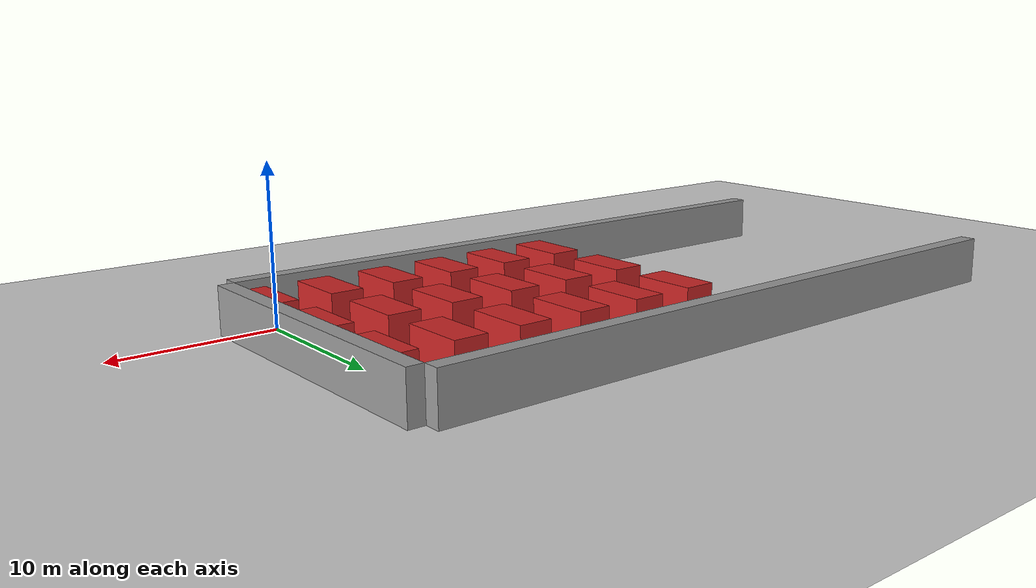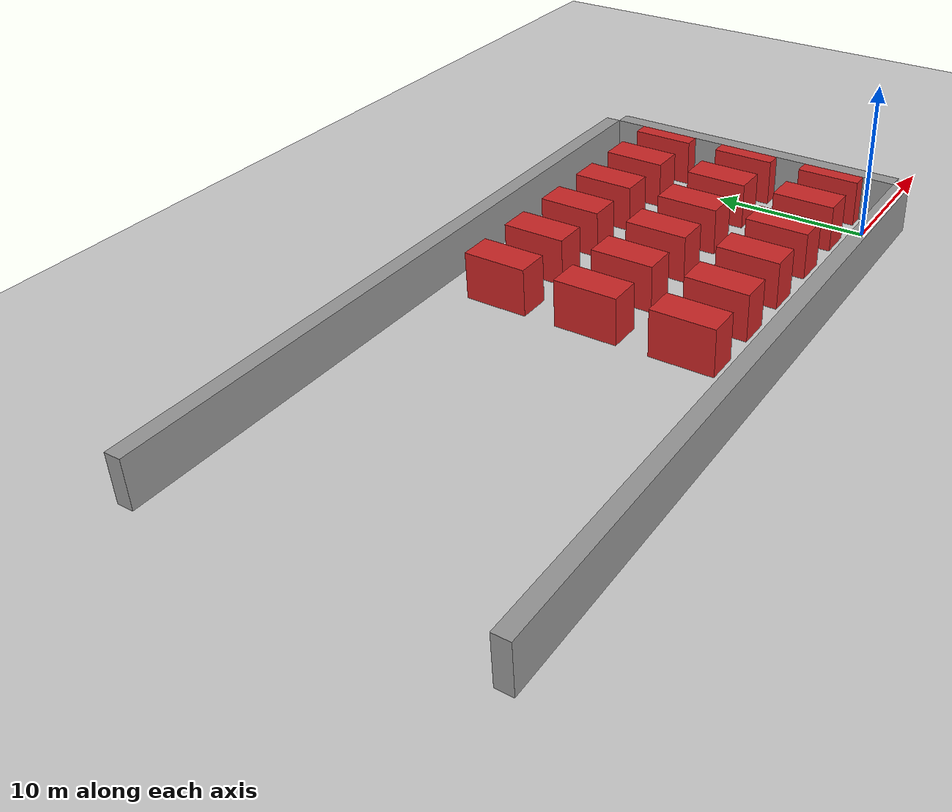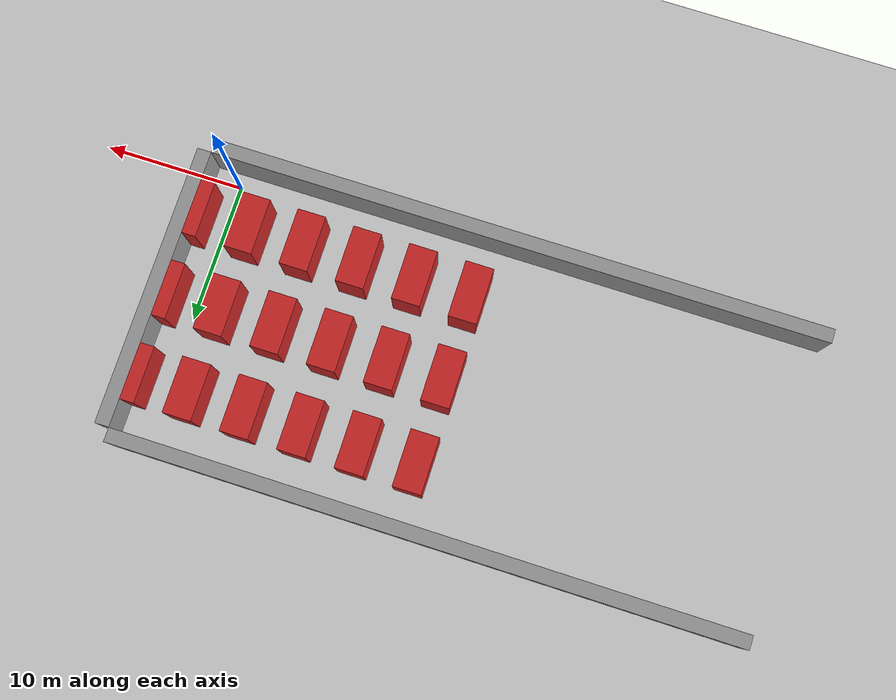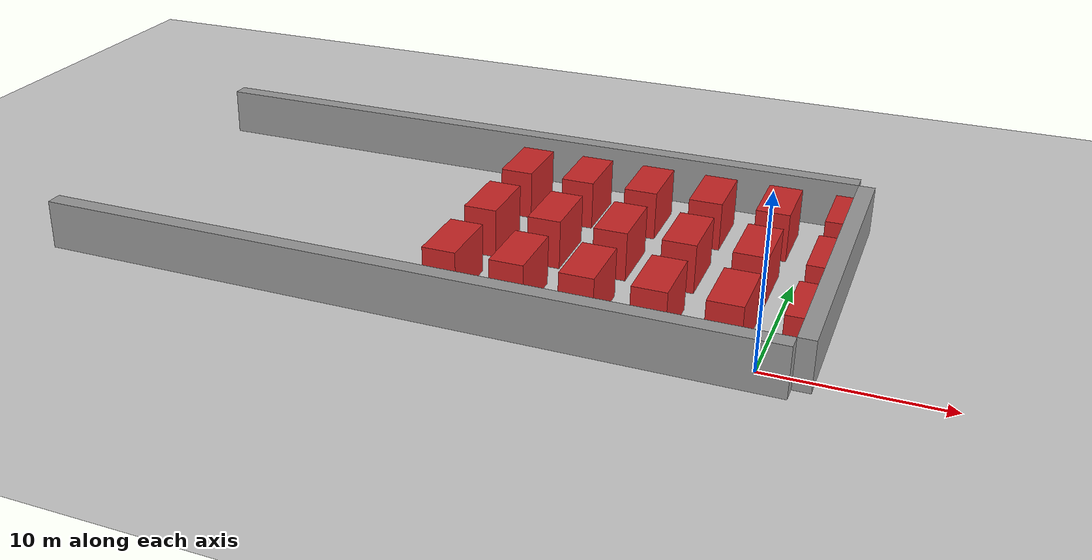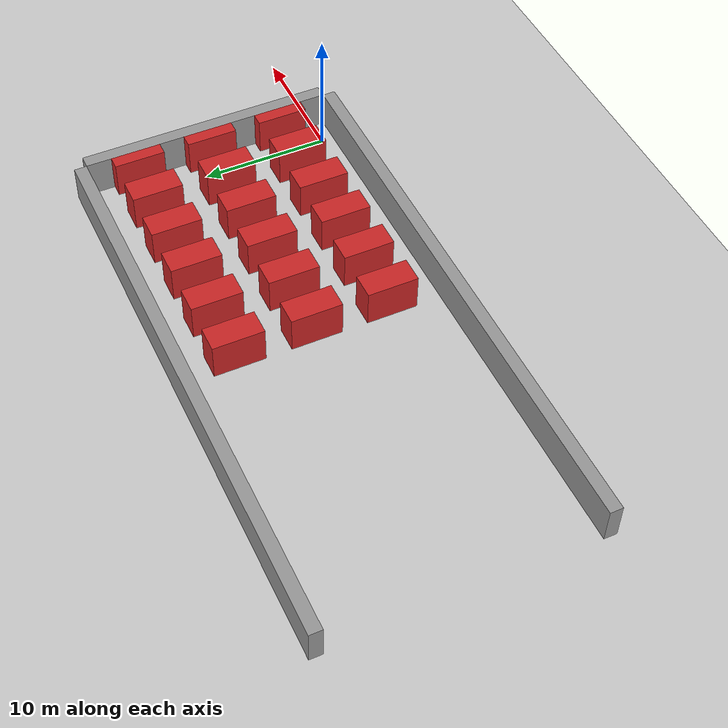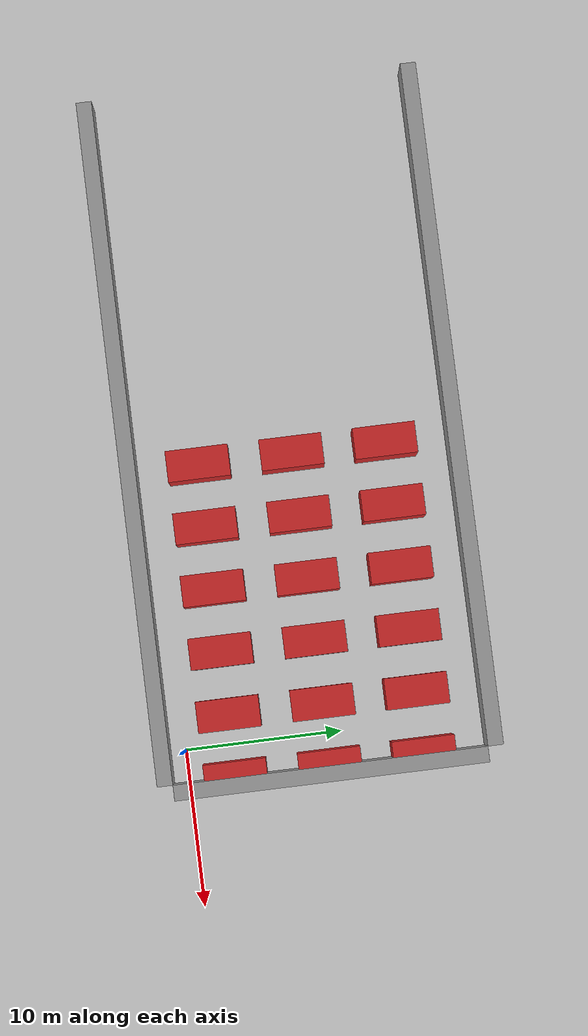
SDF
<sdf version="1.6">
 <world name="default">
  <model name="ground_plane">
   <static>1</static>
   <link name="link">
    <collision name="collision">
     <geometry><plane><normal>0 0 1</normal><size>100 100</size></plane></geometry>
     <surface><friction><ode><mu>100</mu><mu2>50</mu2></ode></friction></surface>
    </collision>
    <visual name="visual">
     <cast_shadows>0</cast_shadows>
     <geometry><plane><normal>0 0 1</normal><size>100 100</size></plane></geometry>
     <material>
      <script><uri>file://media/materials/scripts/gazebo.material</uri><name>Gazebo/Grey</name></script>
     </material>
    </visual>
   </link>
  </model>
  <model name="garage">
   <link name="link">
    <pose>23.5 -0 0 0 -0 0</pose>
    <inertial>
     <mass>1</mass>
     <inertia>
      <ixx>0.166667</ixx>
      <ixy>0</ixy>
      <ixz>0</ixz>
      <iyy>0.166667</iyy>
      <iyz>0</iyz>
      <izz>0.166667</izz>
     </inertia>
    </inertial>
    <kinematic>1</kinematic>
    <gravity>0</gravity>
    <visual name="visual">
     <geometry><box><size>1 20 3</size></box></geometry>
     <material>
      <script><name>Gazebo/Grey</name><uri>file://media/materials/scripts/gazebo.material</uri></script>
      <ambient>0.3 0.3 0.3 1</ambient>
      <diffuse>0.7 0.7 0.7 1</diffuse>
      <specular>0.01 0.01 0.01 1</specular>
      <emissive>0 0 0 1</emissive>
      <shader type="vertex"><normal_map>__default__</normal_map></shader>
     </material>
    </visual>
    <collision name="collision">
     <geometry><box><size>1 20 3</size></box></geometry>
     <surface>
      <friction>
       <ode><mu>1</mu><mu2>1</mu2><fdir1>0 0 0</fdir1><slip1>0</slip1><slip2>0</slip2></ode>
       <torsional>
        <coefficient>1</coefficient>
        <patch_radius>0</patch_radius>
        <surface_radius>0</surface_radius>
        <use_patch_radius>1</use_patch_radius>
        <ode><slip>0</slip></ode>
       </torsional>
      </friction>
      <bounce><restitution_coefficient>0</restitution_coefficient><threshold>1e+06</threshold></bounce>
      <contact>
       <collide_without_contact>0</collide_without_contact>
       <collide_without_contact_bitmask>1</collide_without_contact_bitmask>
       <collide_bitmask>1</collide_bitmask>
       <ode>
        <soft_cfm>0</soft_cfm>
        <soft_erp>0.2</soft_erp>
        <kp>1e+13</kp>
        <kd>1</kd>
        <max_vel>0.01</max_vel>
        <min_depth>0</min_depth>
       </ode>
       <bullet>
        <split_impulse>1</split_impulse>
        <split_impulse_penetration_threshold>-0.01</split_impulse_penetration_threshold>
        <soft_cfm>0</soft_cfm>
        <soft_erp>0.2</soft_erp>
        <kp>1e+13</kp>
        <kd>1</kd>
       </bullet>
      </contact>
     </surface>
    </collision>
   </link>
   <link name="link_0_clone">
    <pose>1 10.5 -0 0 -0 0</pose>
    <inertial>
     <mass>1</mass>
     <inertia>
      <ixx>0.166667</ixx>
      <ixy>0</ixy>
      <ixz>0</ixz>
      <iyy>0.166667</iyy>
      <iyz>0</iyz>
      <izz>0.166667</izz>
     </inertia>
    </inertial>
    <kinematic>1</kinematic>
    <gravity>0</gravity>
    <visual name="visual">
     <geometry><box><size>44 1 3</size></box></geometry>
     <material>
      <lighting>1</lighting>
      <script><uri>file://media/materials/scripts/gazebo.material</uri><name>Gazebo/Grey</name></script>
      <ambient>0.3 0.3 0.3 1</ambient>
      <diffuse>0.7 0.7 0.7 1</diffuse>
      <specular>0.01 0.01 0.01 1</specular>
      <emissive>0 0 0 1</emissive>
      <shader type="vertex"><normal_map>__default__</normal_map></shader>
     </material>
    </visual>
    <collision name="collision">
     <geometry><box><size>44 1 3</size></box></geometry>
     <surface>
      <friction>
       <ode><mu>1</mu><mu2>1</mu2><fdir1>0 0 0</fdir1><slip1>0</slip1><slip2>0</slip2></ode>
       <torsional>
        <coefficient>1</coefficient>
        <patch_radius>0</patch_radius>
        <surface_radius>0</surface_radius>
        <use_patch_radius>1</use_patch_radius>
        <ode><slip>0</slip></ode>
       </torsional>
      </friction>
      <bounce><restitution_coefficient>0</restitution_coefficient><threshold>1e+06</threshold></bounce>
      <contact>
       <collide_without_contact>0</collide_without_contact>
       <collide_without_contact_bitmask>1</collide_without_contact_bitmask>
       <collide_bitmask>1</collide_bitmask>
       <ode>
        <soft_cfm>0</soft_cfm>
        <soft_erp>0.2</soft_erp>
        <kp>1e+13</kp>
        <kd>1</kd>
        <max_vel>0.01</max_vel>
        <min_depth>0</min_depth>
       </ode>
       <bullet>
        <split_impulse>1</split_impulse>
        <split_impulse_penetration_threshold>-0.01</split_impulse_penetration_threshold>
        <soft_cfm>0</soft_cfm>
        <soft_erp>0.2</soft_erp>
        <kp>1e+13</kp>
        <kd>1</kd>
       </bullet>
      </contact>
     </surface>
    </collision>
   </link>
   <link name="link_0_clone_clone">
    <pose>1 -10.5 -0 0 -0 0</pose>
    <inertial>
     <mass>1</mass>
     <inertia>
      <ixx>0.166667</ixx>
      <ixy>0</ixy>
      <ixz>0</ixz>
      <iyy>0.166667</iyy>
      <iyz>0</iyz>
      <izz>0.166667</izz>
     </inertia>
    </inertial>
    <kinematic>1</kinematic>
    <gravity>0</gravity>
    <visual name="visual">
     <geometry><box><size>44 1 3</size></box></geometry>
     <material>
      <lighting>1</lighting>
      <script><uri>file://media/materials/scripts/gazebo.material</uri><name>Gazebo/Grey</name></script>
      <ambient>0.3 0.3 0.3 1</ambient>
      <diffuse>0.7 0.7 0.7 1</diffuse>
      <specular>0.01 0.01 0.01 1</specular>
      <emissive>0 0 0 1</emissive>
      <shader type="vertex"><normal_map>__default__</normal_map></shader>
     </material>
    </visual>
    <collision name="collision">
     <geometry><box><size>44 1 3</size></box></geometry>
     <surface>
      <friction>
       <ode><mu>1</mu><mu2>1</mu2><fdir1>0 0 0</fdir1><slip1>0</slip1><slip2>0</slip2></ode>
       <torsional>
        <coefficient>1</coefficient>
        <patch_radius>0</patch_radius>
        <surface_radius>0</surface_radius>
        <use_patch_radius>1</use_patch_radius>
        <ode><slip>0</slip></ode>
       </torsional>
      </friction>
      <bounce><restitution_coefficient>0</restitution_coefficient><threshold>1e+06</threshold></bounce>
      <contact>
       <collide_without_contact>0</collide_without_contact>
       <collide_without_contact_bitmask>1</collide_without_contact_bitmask>
       <collide_bitmask>1</collide_bitmask>
       <ode>
        <soft_cfm>0</soft_cfm>
        <soft_erp>0.2</soft_erp>
        <kp>1e+13</kp>
        <kd>1</kd>
        <max_vel>0.01</max_vel>
        <min_depth>0</min_depth>
       </ode>
       <bullet>
        <split_impulse>1</split_impulse>
        <split_impulse_penetration_threshold>-0.01</split_impulse_penetration_threshold>
        <soft_cfm>0</soft_cfm>
        <soft_erp>0.2</soft_erp>
        <kp>1e+13</kp>
        <kd>1</kd>
       </bullet>
      </contact>
     </surface>
    </collision>
   </link>
   <link name="link_1_clone_1_clone_1_clone_0_clone_clone_1_clone_1_clone_1">
    <pose>3 -6 -0 0 -0 0</pose>
    <inertial>
     <mass>1</mass>
     <inertia>
      <ixx>0.166667</ixx>
      <ixy>0</ixy>
      <ixz>0</ixz>
      <iyy>0.166667</iyy>
      <iyz>0</iyz>
      <izz>0.166667</izz>
     </inertia>
    </inertial>
    <kinematic>1</kinematic>
    <gravity>0</gravity>
    <visual name="visual">
     <geometry><box><size>2 4 3</size></box></geometry>
     <material>
      <lighting>1</lighting>
      <script><uri>file://media/materials/scripts/gazebo.material</uri><name>Gazebo/Red</name></script>
      <ambient>0.2 0.1 0.8 1</ambient>
      <diffuse>0.7 0.7 0.7 1</diffuse>
      <specular>0.01 0.01 0.01 1</specular>
      <emissive>0 0 0 1</emissive>
      <shader type="vertex"><normal_map>__default__</normal_map></shader>
     </material>
    </visual>
    <collision name="collision">
     <geometry><box><size>2 4 3</size></box></geometry>
     <surface>
      <friction>
       <ode><mu>1</mu><mu2>1</mu2><fdir1>0 0 0</fdir1><slip1>0</slip1><slip2>0</slip2></ode>
       <torsional>
        <coefficient>1</coefficient>
        <patch_radius>0</patch_radius>
        <surface_radius>0</surface_radius>
        <use_patch_radius>1</use_patch_radius>
        <ode><slip>0</slip></ode>
       </torsional>
      </friction>
      <bounce><restitution_coefficient>0</restitution_coefficient><threshold>1e+06</threshold></bounce>
      <contact>
       <collide_without_contact>0</collide_without_contact>
       <collide_without_contact_bitmask>1</collide_without_contact_bitmask>
       <collide_bitmask>1</collide_bitmask>
       <ode>
        <soft_cfm>0</soft_cfm>
        <soft_erp>0.2</soft_erp>
        <kp>1e+13</kp>
        <kd>1</kd>
        <max_vel>0.01</max_vel>
        <min_depth>0</min_depth>
       </ode>
       <bullet>
        <split_impulse>1</split_impulse>
        <split_impulse_penetration_threshold>-0.01</split_impulse_penetration_threshold>
        <soft_cfm>0</soft_cfm>
        <soft_erp>0.2</soft_erp>
        <kp>1e+13</kp>
        <kd>1</kd>
       </bullet>
      </contact>
     </surface>
    </collision>
   </link>
   <link name="link_1_clone_1_clone_1_clone_0_clone_clone_1_clone_1_clone_1_clone">
    <pose>3 -0 -0 0 -0 0</pose>
    <inertial>
     <mass>1</mass>
     <inertia>
      <ixx>0.166667</ixx>
      <ixy>0</ixy>
      <ixz>0</ixz>
      <iyy>0.166667</iyy>
      <iyz>0</iyz>
      <izz>0.166667</izz>
     </inertia>
    </inertial>
    <kinematic>1</kinematic>
    <gravity>0</gravity>
    <visual name="visual">
     <geometry><box><size>2 4 3</size></box></geometry>
     <material>
      <lighting>1</lighting>
      <script><uri>file://media/materials/scripts/gazebo.material</uri><name>Gazebo/Red</name></script>
      <ambient>0.2 0.1 0.8 1</ambient>
      <diffuse>0.7 0.7 0.7 1</diffuse>
      <specular>0.01 0.01 0.01 1</specular>
      <emissive>0 0 0 1</emissive>
      <shader type="vertex"><normal_map>__default__</normal_map></shader>
     </material>
    </visual>
    <collision name="collision">
     <geometry><box><size>2 4 3</size></box></geometry>
     <surface>
      <friction>
       <ode><mu>1</mu><mu2>1</mu2><fdir1>0 0 0</fdir1><slip1>0</slip1><slip2>0</slip2></ode>
       <torsional>
        <coefficient>1</coefficient>
        <patch_radius>0</patch_radius>
        <surface_radius>0</surface_radius>
        <use_patch_radius>1</use_patch_radius>
        <ode><slip>0</slip></ode>
       </torsional>
      </friction>
      <bounce><restitution_coefficient>0</restitution_coefficient><threshold>1e+06</threshold></bounce>
      <contact>
       <collide_without_contact>0</collide_without_contact>
       <collide_without_contact_bitmask>1</collide_without_contact_bitmask>
       <collide_bitmask>1</collide_bitmask>
       <ode>
        <soft_cfm>0</soft_cfm>
        <soft_erp>0.2</soft_erp>
        <kp>1e+13</kp>
        <kd>1</kd>
        <max_vel>0.01</max_vel>
        <min_depth>0</min_depth>
       </ode>
       <bullet>
        <split_impulse>1</split_impulse>
        <split_impulse_penetration_threshold>-0.01</split_impulse_penetration_threshold>
        <soft_cfm>0</soft_cfm>
        <soft_erp>0.2</soft_erp>
        <kp>1e+13</kp>
        <kd>1</kd>
       </bullet>
      </contact>
     </surface>
    </collision>
   </link>
   <link name="link_1_clone_1_clone_1_clone_0_clone_clone_1_clone_1_clone_1_clone_0">
    <pose>3 6 -0 0 -0 0</pose>
    <inertial>
     <mass>1</mass>
     <inertia>
      <ixx>0.166667</ixx>
      <ixy>0</ixy>
      <ixz>0</ixz>
      <iyy>0.166667</iyy>
      <iyz>0</iyz>
      <izz>0.166667</izz>
     </inertia>
    </inertial>
    <kinematic>1</kinematic>
    <gravity>0</gravity>
    <visual name="visual">
     <geometry><box><size>2 4 3</size></box></geometry>
     <material>
      <lighting>1</lighting>
      <script><uri>file://media/materials/scripts/gazebo.material</uri><name>Gazebo/Red</name></script>
      <ambient>0.2 0.1 0.8 1</ambient>
      <diffuse>0.7 0.7 0.7 1</diffuse>
      <specular>0.01 0.01 0.01 1</specular>
      <emissive>0 0 0 1</emissive>
      <shader type="vertex"><normal_map>__default__</normal_map></shader>
     </material>
    </visual>
    <collision name="collision">
     <geometry><box><size>2 4 3</size></box></geometry>
     <surface>
      <friction>
       <ode><mu>1</mu><mu2>1</mu2><fdir1>0 0 0</fdir1><slip1>0</slip1><slip2>0</slip2></ode>
       <torsional>
        <coefficient>1</coefficient>
        <patch_radius>0</patch_radius>
        <surface_radius>0</surface_radius>
        <use_patch_radius>1</use_patch_radius>
        <ode><slip>0</slip></ode>
       </torsional>
      </friction>
      <bounce><restitution_coefficient>0</restitution_coefficient><threshold>1e+06</threshold></bounce>
      <contact>
       <collide_without_contact>0</collide_without_contact>
       <collide_without_contact_bitmask>1</collide_without_contact_bitmask>
       <collide_bitmask>1</collide_bitmask>
       <ode>
        <soft_cfm>0</soft_cfm>
        <soft_erp>0.2</soft_erp>
        <kp>1e+13</kp>
        <kd>1</kd>
        <max_vel>0.01</max_vel>
        <min_depth>0</min_depth>
       </ode>
       <bullet>
        <split_impulse>1</split_impulse>
        <split_impulse_penetration_threshold>-0.01</split_impulse_penetration_threshold>
        <soft_cfm>0</soft_cfm>
        <soft_erp>0.2</soft_erp>
        <kp>1e+13</kp>
        <kd>1</kd>
       </bullet>
      </contact>
     </surface>
    </collision>
   </link>
   <link name="link_1_clone_1_clone_1_clone_0_clone_clone_1_clone_1_clone_1_clone_1">
    <pose>7 -6 0 0 -0 0</pose>
    <inertial>
     <mass>1</mass>
     <inertia>
      <ixx>0.166667</ixx>
      <ixy>0</ixy>
      <ixz>0</ixz>
      <iyy>0.166667</iyy>
      <iyz>0</iyz>
      <izz>0.166667</izz>
     </inertia>
    </inertial>
    <kinematic>1</kinematic>
    <gravity>0</gravity>
    <visual name="visual">
     <geometry><box><size>2 4 3</size></box></geometry>
     <material>
      <lighting>1</lighting>
      <script><uri>file://media/materials/scripts/gazebo.material</uri><name>Gazebo/Red</name></script>
      <ambient>0.2 0.9 0.2 0.3</ambient>
      <diffuse>0.7 0.7 0.7 1</diffuse>
      <specular>0.01 0.01 0.01 1</specular>
      <emissive>0 0 0 1</emissive>
      <shader type="vertex"><normal_map>__default__</normal_map></shader>
     </material>
    </visual>
    <collision name="collision">
     <geometry><box><size>2 4 3</size></box></geometry>
     <surface>
      <friction>
       <ode><mu>1</mu><mu2>1</mu2><fdir1>0 0 0</fdir1><slip1>0</slip1><slip2>0</slip2></ode>
       <torsional>
        <coefficient>1</coefficient>
        <patch_radius>0</patch_radius>
        <surface_radius>0</surface_radius>
        <use_patch_radius>1</use_patch_radius>
        <ode><slip>0</slip></ode>
       </torsional>
      </friction>
      <bounce><restitution_coefficient>0</restitution_coefficient><threshold>1e+06</threshold></bounce>
      <contact>
       <collide_without_contact>0</collide_without_contact>
       <collide_without_contact_bitmask>1</collide_without_contact_bitmask>
       <collide_bitmask>1</collide_bitmask>
       <ode>
        <soft_cfm>0</soft_cfm>
        <soft_erp>0.2</soft_erp>
        <kp>1e+13</kp>
        <kd>1</kd>
        <max_vel>0.01</max_vel>
        <min_depth>0</min_depth>
       </ode>
       <bullet>
        <split_impulse>1</split_impulse>
        <split_impulse_penetration_threshold>-0.01</split_impulse_penetration_threshold>
        <soft_cfm>0</soft_cfm>
        <soft_erp>0.2</soft_erp>
        <kp>1e+13</kp>
        <kd>1</kd>
       </bullet>
      </contact>
     </surface>
    </collision>
   </link>
   <link name="link_1_clone_1_clone_1_clone_0_clone_clone_1_clone_1_clone_1_clone_1_clone">
    <pose>7 -0 0 0 -0 0</pose>
    <inertial>
     <mass>1</mass>
     <inertia>
      <ixx>0.166667</ixx>
      <ixy>0</ixy>
      <ixz>0</ixz>
      <iyy>0.166667</iyy>
      <iyz>0</iyz>
      <izz>0.166667</izz>
     </inertia>
    </inertial>
    <kinematic>1</kinematic>
    <gravity>0</gravity>
    <visual name="visual">
     <geometry><box><size>2 4 3</size></box></geometry>
     <material>
      <lighting>1</lighting>
      <script><uri>file://media/materials/scripts/gazebo.material</uri><name>Gazebo/Red</name></script>
      <ambient>0.2 0.9 0.2 0.3</ambient>
      <diffuse>0.7 0.7 0.7 1</diffuse>
      <specular>0.01 0.01 0.01 1</specular>
      <emissive>0 0 0 1</emissive>
      <shader type="vertex"><normal_map>__default__</normal_map></shader>
     </material>
    </visual>
    <collision name="collision">
     <geometry><box><size>2 4 3</size></box></geometry>
     <surface>
      <friction>
       <ode><mu>1</mu><mu2>1</mu2><fdir1>0 0 0</fdir1><slip1>0</slip1><slip2>0</slip2></ode>
       <torsional>
        <coefficient>1</coefficient>
        <patch_radius>0</patch_radius>
        <surface_radius>0</surface_radius>
        <use_patch_radius>1</use_patch_radius>
        <ode><slip>0</slip></ode>
       </torsional>
      </friction>
      <bounce><restitution_coefficient>0</restitution_coefficient><threshold>1e+06</threshold></bounce>
      <contact>
       <collide_without_contact>0</collide_without_contact>
       <collide_without_contact_bitmask>1</collide_without_contact_bitmask>
       <collide_bitmask>1</collide_bitmask>
       <ode>
        <soft_cfm>0</soft_cfm>
        <soft_erp>0.2</soft_erp>
        <kp>1e+13</kp>
        <kd>1</kd>
        <max_vel>0.01</max_vel>
        <min_depth>0</min_depth>
       </ode>
       <bullet>
        <split_impulse>1</split_impulse>
        <split_impulse_penetration_threshold>-0.01</split_impulse_penetration_threshold>
        <soft_cfm>0</soft_cfm>
        <soft_erp>0.2</soft_erp>
        <kp>1e+13</kp>
        <kd>1</kd>
       </bullet>
      </contact>
     </surface>
    </collision>
   </link>
   <link name="link_1_clone_1_clone_1_clone_0_clone_clone_1_clone_1_clone_1_clone_1_clone_0">
    <pose>7 6 0 0 -0 0</pose>
    <inertial>
     <mass>1</mass>
     <inertia>
      <ixx>0.166667</ixx>
      <ixy>0</ixy>
      <ixz>0</ixz>
      <iyy>0.166667</iyy>
      <iyz>0</iyz>
      <izz>0.166667</izz>
     </inertia>
    </inertial>
    <kinematic>1</kinematic>
    <gravity>0</gravity>
    <visual name="visual">
     <geometry><box><size>2 4 3</size></box></geometry>
     <material>
      <lighting>1</lighting>
      <script><uri>file://media/materials/scripts/gazebo.material</uri><name>Gazebo/Red</name></script>
      <ambient>0.2 0.9 0.2 0.3</ambient>
      <diffuse>0.7 0.7 0.7 1</diffuse>
      <specular>0.01 0.01 0.01 1</specular>
      <emissive>0 0 0 1</emissive>
      <shader type="vertex"><normal_map>__default__</normal_map></shader>
     </material>
    </visual>
    <collision name="collision">
     <geometry><box><size>2 4 3</size></box></geometry>
     <surface>
      <friction>
       <ode><mu>1</mu><mu2>1</mu2><fdir1>0 0 0</fdir1><slip1>0</slip1><slip2>0</slip2></ode>
       <torsional>
        <coefficient>1</coefficient>
        <patch_radius>0</patch_radius>
        <surface_radius>0</surface_radius>
        <use_patch_radius>1</use_patch_radius>
        <ode><slip>0</slip></ode>
       </torsional>
      </friction>
      <bounce><restitution_coefficient>0</restitution_coefficient><threshold>1e+06</threshold></bounce>
      <contact>
       <collide_without_contact>0</collide_without_contact>
       <collide_without_contact_bitmask>1</collide_without_contact_bitmask>
       <collide_bitmask>1</collide_bitmask>
       <ode>
        <soft_cfm>0</soft_cfm>
        <soft_erp>0.2</soft_erp>
        <kp>1e+13</kp>
        <kd>1</kd>
        <max_vel>0.01</max_vel>
        <min_depth>0</min_depth>
       </ode>
       <bullet>
        <split_impulse>1</split_impulse>
        <split_impulse_penetration_threshold>-0.01</split_impulse_penetration_threshold>
        <soft_cfm>0</soft_cfm>
        <soft_erp>0.2</soft_erp>
        <kp>1e+13</kp>
        <kd>1</kd>
       </bullet>
      </contact>
     </surface>
    </collision>
   </link>
   <link name="link_1_clone_1_clone_1_clone_0_clone_clone_1_clone_1_clone_1_clone_1_clone_1">
    <pose>11 -6 0 0 -0 0</pose>
    <inertial>
     <mass>1</mass>
     <inertia>
      <ixx>0.166667</ixx>
      <ixy>0</ixy>
      <ixz>0</ixz>
      <iyy>0.166667</iyy>
      <iyz>0</iyz>
      <izz>0.166667</izz>
     </inertia>
    </inertial>
    <kinematic>1</kinematic>
    <gravity>0</gravity>
    <visual name="visual">
     <geometry><box><size>2 4 3</size></box></geometry>
     <material>
      <lighting>1</lighting>
      <script><uri>file://media/materials/scripts/gazebo.material</uri><name>Gazebo/Red</name></script>
      <ambient>1 0.2 0.2 0.3</ambient>
      <diffuse>0.7 0.7 0.7 1</diffuse>
      <specular>0.01 0.01 0.01 1</specular>
      <emissive>0 0 0 1</emissive>
      <shader type="vertex"><normal_map>__default__</normal_map></shader>
     </material>
    </visual>
    <collision name="collision">
     <geometry><box><size>2 4 3</size></box></geometry>
     <surface>
      <friction>
       <ode><mu>1</mu><mu2>1</mu2><fdir1>0 0 0</fdir1><slip1>0</slip1><slip2>0</slip2></ode>
       <torsional>
        <coefficient>1</coefficient>
        <patch_radius>0</patch_radius>
        <surface_radius>0</surface_radius>
        <use_patch_radius>1</use_patch_radius>
        <ode><slip>0</slip></ode>
       </torsional>
      </friction>
      <bounce><restitution_coefficient>0</restitution_coefficient><threshold>1e+06</threshold></bounce>
      <contact>
       <collide_without_contact>0</collide_without_contact>
       <collide_without_contact_bitmask>1</collide_without_contact_bitmask>
       <collide_bitmask>1</collide_bitmask>
       <ode>
        <soft_cfm>0</soft_cfm>
        <soft_erp>0.2</soft_erp>
        <kp>1e+13</kp>
        <kd>1</kd>
        <max_vel>0.01</max_vel>
        <min_depth>0</min_depth>
       </ode>
       <bullet>
        <split_impulse>1</split_impulse>
        <split_impulse_penetration_threshold>-0.01</split_impulse_penetration_threshold>
        <soft_cfm>0</soft_cfm>
        <soft_erp>0.2</soft_erp>
        <kp>1e+13</kp>
        <kd>1</kd>
       </bullet>
      </contact>
     </surface>
    </collision>
   </link>
   <link name="link_1_clone_1_clone_1_clone_0_clone_clone_1_clone_1_clone_1_clone_1_clone_1_clone">
    <pose>11 -0 0 0 -0 0</pose>
    <inertial>
     <mass>1</mass>
     <inertia>
      <ixx>0.166667</ixx>
      <ixy>0</ixy>
      <ixz>0</ixz>
      <iyy>0.166667</iyy>
      <iyz>0</iyz>
      <izz>0.166667</izz>
     </inertia>
    </inertial>
    <kinematic>1</kinematic>
    <visual name="visual">
     <geometry><box><size>2 4 3</size></box></geometry>
     <material>
      <lighting>1</lighting>
      <script><uri>file://media/materials/scripts/gazebo.material</uri><name>Gazebo/Red</name></script>
      <ambient>1 0.2 0.2 0.3</ambient>
      <diffuse>0.7 0.7 0.7 1</diffuse>
      <specular>0.01 0.01 0.01 1</specular>
      <emissive>0 0 0 1</emissive>
      <shader type="vertex"><normal_map>__default__</normal_map></shader>
     </material>
    </visual>
    <collision name="collision">
     <geometry><box><size>2 4 3</size></box></geometry>
     <surface>
      <friction>
       <ode><mu>1</mu><mu2>1</mu2><fdir1>0 0 0</fdir1><slip1>0</slip1><slip2>0</slip2></ode>
       <torsional>
        <coefficient>1</coefficient>
        <patch_radius>0</patch_radius>
        <surface_radius>0</surface_radius>
        <use_patch_radius>1</use_patch_radius>
        <ode><slip>0</slip></ode>
       </torsional>
      </friction>
      <bounce><restitution_coefficient>0</restitution_coefficient><threshold>1e+06</threshold></bounce>
      <contact>
       <collide_without_contact>0</collide_without_contact>
       <collide_without_contact_bitmask>1</collide_without_contact_bitmask>
       <collide_bitmask>1</collide_bitmask>
       <ode>
        <soft_cfm>0</soft_cfm>
        <soft_erp>0.2</soft_erp>
        <kp>1e+13</kp>
        <kd>1</kd>
        <max_vel>0.01</max_vel>
        <min_depth>0</min_depth>
       </ode>
       <bullet>
        <split_impulse>1</split_impulse>
        <split_impulse_penetration_threshold>-0.01</split_impulse_penetration_threshold>
        <soft_cfm>0</soft_cfm>
        <soft_erp>0.2</soft_erp>
        <kp>1e+13</kp>
        <kd>1</kd>
       </bullet>
      </contact>
     </surface>
    </collision>
   </link>
   <link name="link_1_clone_1_clone_1_clone_0_clone_clone_1_clone_1_clone_1_clone_1_clone_1_clone_0">
    <pose>11 6 0 0 -0 0</pose>
    <inertial>
     <mass>1</mass>
     <inertia>
      <ixx>0.166667</ixx>
      <ixy>0</ixy>
      <ixz>0</ixz>
      <iyy>0.166667</iyy>
      <iyz>0</iyz>
      <izz>0.166667</izz>
     </inertia>
    </inertial>
    <kinematic>1</kinematic>
    <visual name="visual">
     <geometry><box><size>2 4 3</size></box></geometry>
     <material>
      <lighting>1</lighting>
      <script><uri>file://media/materials/scripts/gazebo.material</uri><name>Gazebo/Red</name></script>
      <ambient>1 0.2 0.2 0.3</ambient>
      <diffuse>0.7 0.7 0.7 1</diffuse>
      <specular>0.01 0.01 0.01 1</specular>
      <emissive>0 0 0 1</emissive>
      <shader type="vertex"><normal_map>__default__</normal_map></shader>
     </material>
    </visual>
    <collision name="collision">
     <geometry><box><size>2 4 3</size></box></geometry>
     <surface>
      <friction>
       <ode><mu>1</mu><mu2>1</mu2><fdir1>0 0 0</fdir1><slip1>0</slip1><slip2>0</slip2></ode>
       <torsional>
        <coefficient>1</coefficient>
        <patch_radius>0</patch_radius>
        <surface_radius>0</surface_radius>
        <use_patch_radius>1</use_patch_radius>
        <ode><slip>0</slip></ode>
       </torsional>
      </friction>
      <bounce><restitution_coefficient>0</restitution_coefficient><threshold>1e+06</threshold></bounce>
      <contact>
       <collide_without_contact>0</collide_without_contact>
       <collide_without_contact_bitmask>1</collide_without_contact_bitmask>
       <collide_bitmask>1</collide_bitmask>
       <ode>
        <soft_cfm>0</soft_cfm>
        <soft_erp>0.2</soft_erp>
        <kp>1e+13</kp>
        <kd>1</kd>
        <max_vel>0.01</max_vel>
        <min_depth>0</min_depth>
       </ode>
       <bullet>
        <split_impulse>1</split_impulse>
        <split_impulse_penetration_threshold>-0.01</split_impulse_penetration_threshold>
        <soft_cfm>0</soft_cfm>
        <soft_erp>0.2</soft_erp>
        <kp>1e+13</kp>
        <kd>1</kd>
       </bullet>
      </contact>
     </surface>
    </collision>
   </link>
   <link name="link_1_clone_1_clone_1_clone_0_clone_clone_1_clone_1_clone_1_clone_1_clone_1_clone_1_clone">
    <pose>15 -0 -0 0 -0 0</pose>
    <inertial>
     <mass>1</mass>
     <inertia>
      <ixx>0.166667</ixx>
      <ixy>0</ixy>
      <ixz>0</ixz>
      <iyy>0.166667</iyy>
      <iyz>0</iyz>
      <izz>0.166667</izz>
     </inertia>
    </inertial>
    <kinematic>1</kinematic>
    <gravity>0</gravity>
    <visual name="visual">
     <geometry><box><size>2 4 3</size></box></geometry>
     <material>
      <lighting>1</lighting>
      <script><uri>file://media/materials/scripts/gazebo.material</uri><name>Gazebo/Red</name></script>
      <ambient>1 0.6 0.5 0.9</ambient>
      <diffuse>0.7 0.7 0.7 1</diffuse>
      <specular>0.01 0.01 0.01 1</specular>
      <emissive>0 0 0 1</emissive>
      <shader type="vertex"><normal_map>__default__</normal_map></shader>
     </material>
    </visual>
    <collision name="collision">
     <geometry><box><size>2 4 3</size></box></geometry>
     <surface>
      <friction>
       <ode><mu>1</mu><mu2>1</mu2><fdir1>0 0 0</fdir1><slip1>0</slip1><slip2>0</slip2></ode>
       <torsional>
        <coefficient>1</coefficient>
        <patch_radius>0</patch_radius>
        <surface_radius>0</surface_radius>
        <use_patch_radius>1</use_patch_radius>
        <ode><slip>0</slip></ode>
       </torsional>
      </friction>
      <bounce><restitution_coefficient>0</restitution_coefficient><threshold>1e+06</threshold></bounce>
      <contact>
       <collide_without_contact>0</collide_without_contact>
       <collide_without_contact_bitmask>1</collide_without_contact_bitmask>
       <collide_bitmask>1</collide_bitmask>
       <ode>
        <soft_cfm>0</soft_cfm>
        <soft_erp>0.2</soft_erp>
        <kp>1e+13</kp>
        <kd>1</kd>
        <max_vel>0.01</max_vel>
        <min_depth>0</min_depth>
       </ode>
       <bullet>
        <split_impulse>1</split_impulse>
        <split_impulse_penetration_threshold>-0.01</split_impulse_penetration_threshold>
        <soft_cfm>0</soft_cfm>
        <soft_erp>0.2</soft_erp>
        <kp>1e+13</kp>
        <kd>1</kd>
       </bullet>
      </contact>
     </surface>
    </collision>
   </link>
   <link name="link_1_clone_1_clone_1_clone_0_clone_clone_1_clone_1_clone_1_clone_1_clone_1_clone_1_clone_0">
    <pose>15 6 -0 0 -0 0</pose>
    <inertial>
     <mass>1</mass>
     <inertia>
      <ixx>0.166667</ixx>
      <ixy>0</ixy>
      <ixz>0</ixz>
      <iyy>0.166667</iyy>
      <iyz>0</iyz>
      <izz>0.166667</izz>
     </inertia>
    </inertial>
    <kinematic>1</kinematic>
    <gravity>0</gravity>
    <visual name="visual">
     <geometry><box><size>2 4 3</size></box></geometry>
     <material>
      <lighting>1</lighting>
      <script><uri>file://media/materials/scripts/gazebo.material</uri><name>Gazebo/Red</name></script>
      <ambient>1 0.6 0.5 0.9</ambient>
      <diffuse>0.7 0.7 0.7 1</diffuse>
      <specular>0.01 0.01 0.01 1</specular>
      <emissive>0 0 0 1</emissive>
      <shader type="vertex"><normal_map>__default__</normal_map></shader>
     </material>
    </visual>
    <collision name="collision">
     <geometry><box><size>2 4 3</size></box></geometry>
     <surface>
      <friction>
       <ode><mu>1</mu><mu2>1</mu2><fdir1>0 0 0</fdir1><slip1>0</slip1><slip2>0</slip2></ode>
       <torsional>
        <coefficient>1</coefficient>
        <patch_radius>0</patch_radius>
        <surface_radius>0</surface_radius>
        <use_patch_radius>1</use_patch_radius>
        <ode><slip>0</slip></ode>
       </torsional>
      </friction>
      <bounce><restitution_coefficient>0</restitution_coefficient><threshold>1e+06</threshold></bounce>
      <contact>
       <collide_without_contact>0</collide_without_contact>
       <collide_without_contact_bitmask>1</collide_without_contact_bitmask>
       <collide_bitmask>1</collide_bitmask>
       <ode>
        <soft_cfm>0</soft_cfm>
        <soft_erp>0.2</soft_erp>
        <kp>1e+13</kp>
        <kd>1</kd>
        <max_vel>0.01</max_vel>
        <min_depth>0</min_depth>
       </ode>
       <bullet>
        <split_impulse>1</split_impulse>
        <split_impulse_penetration_threshold>-0.01</split_impulse_penetration_threshold>
        <soft_cfm>0</soft_cfm>
        <soft_erp>0.2</soft_erp>
        <kp>1e+13</kp>
        <kd>1</kd>
       </bullet>
      </contact>
     </surface>
    </collision>
   </link>
   <link name="link_1_clone_1_clone_1_clone_0_clone_clone_1_clone_1_clone_1_clone_1_clone_1_clone_1_clone_0_clone">
    <pose>19 6 -0 0 -0 0</pose>
    <inertial>
     <mass>1</mass>
     <inertia>
      <ixx>0.166667</ixx>
      <ixy>0</ixy>
      <ixz>0</ixz>
      <iyy>0.166667</iyy>
      <iyz>0</iyz>
      <izz>0.166667</izz>
     </inertia>
    </inertial>
    <kinematic>1</kinematic>
    <gravity>0</gravity>
    <visual name="visual">
     <geometry><box><size>2 4 3</size></box></geometry>
     <material>
      <lighting>1</lighting>
      <script><uri>file://media/materials/scripts/gazebo.material</uri><name>Gazebo/Red</name></script>
      <ambient>0.3 0.3 0.9 0.1</ambient>
      <diffuse>0.7 0.7 0.7 1</diffuse>
      <specular>0.01 0.01 0.01 1</specular>
      <emissive>0 0 0 1</emissive>
      <shader type="vertex"><normal_map>__default__</normal_map></shader>
     </material>
    </visual>
    <collision name="collision">
     <geometry><box><size>2 4 3</size></box></geometry>
     <surface>
      <friction>
       <ode><mu>1</mu><mu2>1</mu2><fdir1>0 0 0</fdir1><slip1>0</slip1><slip2>0</slip2></ode>
       <torsional>
        <coefficient>1</coefficient>
        <patch_radius>0</patch_radius>
        <surface_radius>0</surface_radius>
        <use_patch_radius>1</use_patch_radius>
        <ode><slip>0</slip></ode>
       </torsional>
      </friction>
      <bounce><restitution_coefficient>0</restitution_coefficient><threshold>1e+06</threshold></bounce>
      <contact>
       <collide_without_contact>0</collide_without_contact>
       <collide_without_contact_bitmask>1</collide_without_contact_bitmask>
       <collide_bitmask>1</collide_bitmask>
       <ode>
        <soft_cfm>0</soft_cfm>
        <soft_erp>0.2</soft_erp>
        <kp>1e+13</kp>
        <kd>1</kd>
        <max_vel>0.01</max_vel>
        <min_depth>0</min_depth>
       </ode>
       <bullet>
        <split_impulse>1</split_impulse>
        <split_impulse_penetration_threshold>-0.01</split_impulse_penetration_threshold>
        <soft_cfm>0</soft_cfm>
        <soft_erp>0.2</soft_erp>
        <kp>1e+13</kp>
        <kd>1</kd>
       </bullet>
      </contact>
     </surface>
    </collision>
   </link>
   <link name="link_1_clone_1_clone_1_clone_0_clone_clone_1_clone_1_clone_1_clone_1_clone_1_clone_1_clone_0_clone_clone">
    <pose>19 -0 0 0 -0 0</pose>
    <inertial>
     <mass>1</mass>
     <inertia>
      <ixx>0.166667</ixx>
      <ixy>0</ixy>
      <ixz>0</ixz>
      <iyy>0.166667</iyy>
      <iyz>0</iyz>
      <izz>0.166667</izz>
     </inertia>
    </inertial>
    <kinematic>1</kinematic>
    <gravity>0</gravity>
    <visual name="visual">
     <geometry><box><size>2 4 3</size></box></geometry>
     <material>
      <lighting>1</lighting>
      <script><uri>file://media/materials/scripts/gazebo.material</uri><name>Gazebo/Red</name></script>
      <ambient>0.3 0.3 0.9 0.1</ambient>
      <diffuse>0.7 0.7 0.7 1</diffuse>
      <specular>0.01 0.01 0.01 1</specular>
      <emissive>0 0 0 1</emissive>
      <shader type="vertex"><normal_map>__default__</normal_map></shader>
     </material>
    </visual>
    <collision name="collision">
     <geometry><box><size>2 4 3</size></box></geometry>
     <surface>
      <friction>
       <ode><mu>1</mu><mu2>1</mu2><fdir1>0 0 0</fdir1><slip1>0</slip1><slip2>0</slip2></ode>
       <torsional>
        <coefficient>1</coefficient>
        <patch_radius>0</patch_radius>
        <surface_radius>0</surface_radius>
        <use_patch_radius>1</use_patch_radius>
        <ode><slip>0</slip></ode>
       </torsional>
      </friction>
      <bounce><restitution_coefficient>0</restitution_coefficient><threshold>1e+06</threshold></bounce>
      <contact>
       <collide_without_contact>0</collide_without_contact>
       <collide_without_contact_bitmask>1</collide_without_contact_bitmask>
       <collide_bitmask>1</collide_bitmask>
       <ode>
        <soft_cfm>0</soft_cfm>
        <soft_erp>0.2</soft_erp>
        <kp>1e+13</kp>
        <kd>1</kd>
        <max_vel>0.01</max_vel>
        <min_depth>0</min_depth>
       </ode>
       <bullet>
        <split_impulse>1</split_impulse>
        <split_impulse_penetration_threshold>-0.01</split_impulse_penetration_threshold>
        <soft_cfm>0</soft_cfm>
        <soft_erp>0.2</soft_erp>
        <kp>1e+13</kp>
        <kd>1</kd>
       </bullet>
      </contact>
     </surface>
    </collision>
   </link>
   <link name="link_1_clone_1_clone_1_clone_0_clone_clone_1_clone_1_clone_1_clone_1_clone_1_clone_1_clone_0_clone_clone_0">
    <pose>19 -6 0 0 -0 0</pose>
    <inertial>
     <mass>1</mass>
     <inertia>
      <ixx>0.166667</ixx>
      <ixy>0</ixy>
      <ixz>0</ixz>
      <iyy>0.166667</iyy>
      <iyz>0</iyz>
      <izz>0.166667</izz>
     </inertia>
    </inertial>
    <kinematic>1</kinematic>
    <gravity>0</gravity>
    <visual name="visual">
     <geometry><box><size>2 4 3</size></box></geometry>
     <material>
      <lighting>1</lighting>
      <script><uri>file://media/materials/scripts/gazebo.material</uri><name>Gazebo/Red</name></script>
      <ambient>0.3 0.3 0.9 0.1</ambient>
      <diffuse>0.7 0.7 0.7 1</diffuse>
      <specular>0.01 0.01 0.01 1</specular>
      <emissive>0 0 0 1</emissive>
      <shader type="vertex"><normal_map>__default__</normal_map></shader>
     </material>
    </visual>
    <collision name="collision">
     <geometry><box><size>2 4 3</size></box></geometry>
     <surface>
      <friction>
       <ode><mu>1</mu><mu2>1</mu2><fdir1>0 0 0</fdir1><slip1>0</slip1><slip2>0</slip2></ode>
       <torsional>
        <coefficient>1</coefficient>
        <patch_radius>0</patch_radius>
        <surface_radius>0</surface_radius>
        <use_patch_radius>1</use_patch_radius>
        <ode><slip>0</slip></ode>
       </torsional>
      </friction>
      <bounce><restitution_coefficient>0</restitution_coefficient><threshold>1e+06</threshold></bounce>
      <contact>
       <collide_without_contact>0</collide_without_contact>
       <collide_without_contact_bitmask>1</collide_without_contact_bitmask>
       <collide_bitmask>1</collide_bitmask>
       <ode>
        <soft_cfm>0</soft_cfm>
        <soft_erp>0.2</soft_erp>
        <kp>1e+13</kp>
        <kd>1</kd>
        <max_vel>0.01</max_vel>
        <min_depth>0</min_depth>
       </ode>
       <bullet>
        <split_impulse>1</split_impulse>
        <split_impulse_penetration_threshold>-0.01</split_impulse_penetration_threshold>
        <soft_cfm>0</soft_cfm>
        <soft_erp>0.2</soft_erp>
        <kp>1e+13</kp>
        <kd>1</kd>
       </bullet>
      </contact>
     </surface>
    </collision>
   </link>
   <link name="link_1_clone_1_clone_1_clone_0_clone_clone_1_clone_1_clone_1_clone_1_clone_1_clone_1_clone_clone">
    <pose>15 -6 -0 0 -0 0</pose>
    <inertial>
     <mass>1</mass>
     <inertia>
      <ixx>0.166667</ixx>
      <ixy>0</ixy>
      <ixz>0</ixz>
      <iyy>0.166667</iyy>
      <iyz>0</iyz>
      <izz>0.166667</izz>
     </inertia>
    </inertial>
    <kinematic>1</kinematic>
    <gravity>0</gravity>
    <visual name="visual">
     <geometry><box><size>2 4 3</size></box></geometry>
     <material>
      <lighting>1</lighting>
      <script><uri>file://media/materials/scripts/gazebo.material</uri><name>Gazebo/Red</name></script>
      <ambient>1 0.6 0.5 0.9</ambient>
      <diffuse>0.7 0.7 0.7 1</diffuse>
      <specular>0.01 0.01 0.01 1</specular>
      <emissive>0 0 0 1</emissive>
      <shader type="vertex"><normal_map>__default__</normal_map></shader>
     </material>
    </visual>
    <collision name="collision">
     <geometry><box><size>2 4 3</size></box></geometry>
     <surface>
      <friction>
       <ode><mu>1</mu><mu2>1</mu2><fdir1>0 0 0</fdir1><slip1>0</slip1><slip2>0</slip2></ode>
       <torsional>
        <coefficient>1</coefficient>
        <patch_radius>0</patch_radius>
        <surface_radius>0</surface_radius>
        <use_patch_radius>1</use_patch_radius>
        <ode><slip>0</slip></ode>
       </torsional>
      </friction>
      <bounce><restitution_coefficient>0</restitution_coefficient><threshold>1e+06</threshold></bounce>
      <contact>
       <collide_without_contact>0</collide_without_contact>
       <collide_without_contact_bitmask>1</collide_without_contact_bitmask>
       <collide_bitmask>1</collide_bitmask>
       <ode>
        <soft_cfm>0</soft_cfm>
        <soft_erp>0.2</soft_erp>
        <kp>1e+13</kp>
        <kd>1</kd>
        <max_vel>0.01</max_vel>
        <min_depth>0</min_depth>
       </ode>
       <bullet>
        <split_impulse>1</split_impulse>
        <split_impulse_penetration_threshold>-0.01</split_impulse_penetration_threshold>
        <soft_cfm>0</soft_cfm>
        <soft_erp>0.2</soft_erp>
        <kp>1e+13</kp>
        <kd>1</kd>
       </bullet>
      </contact>
     </surface>
    </collision>
   </link>
   <link name="link_1_clone_2">
    <pose>22.5 6 0 0 -0 0</pose>
    <inertial>
     <mass>1</mass>
     <inertia>
      <ixx>0.166667</ixx>
      <ixy>0</ixy>
      <ixz>0</ixz>
      <iyy>0.166667</iyy>
      <iyz>0</iyz>
      <izz>0.166667</izz>
     </inertia>
    </inertial>
    <kinematic>1</kinematic>
    <visual name="visual">
     <geometry><box><size>1 4 3</size></box></geometry>
     <material>
      <lighting>1</lighting>
      <script><uri>file://media/materials/scripts/gazebo.material</uri><name>Gazebo/Red</name></script>
      <ambient>0.3 0 0 0</ambient>
      <diffuse>0.7 0.7 0.7 1</diffuse>
      <specular>0.01 0.01 0.01 1</specular>
      <emissive>0 0 0 1</emissive>
      <shader type="vertex"><normal_map>__default__</normal_map></shader>
     </material>
    </visual>
    <collision name="collision">
     <geometry><box><size>1 4 3</size></box></geometry>
     <surface>
      <friction>
       <ode><mu>1</mu><mu2>1</mu2><fdir1>0 0 0</fdir1><slip1>0</slip1><slip2>0</slip2></ode>
       <torsional>
        <coefficient>1</coefficient>
        <patch_radius>0</patch_radius>
        <surface_radius>0</surface_radius>
        <use_patch_radius>1</use_patch_radius>
        <ode><slip>0</slip></ode>
       </torsional>
      </friction>
      <bounce><restitution_coefficient>0</restitution_coefficient><threshold>1e+06</threshold></bounce>
      <contact>
       <collide_without_contact>0</collide_without_contact>
       <collide_without_contact_bitmask>1</collide_without_contact_bitmask>
       <collide_bitmask>1</collide_bitmask>
       <ode>
        <soft_cfm>0</soft_cfm>
        <soft_erp>0.2</soft_erp>
        <kp>1e+13</kp>
        <kd>1</kd>
        <max_vel>0.01</max_vel>
        <min_depth>0</min_depth>
       </ode>
       <bullet>
        <split_impulse>1</split_impulse>
        <split_impulse_penetration_threshold>-0.01</split_impulse_penetration_threshold>
        <soft_cfm>0</soft_cfm>
        <soft_erp>0.2</soft_erp>
        <kp>1e+13</kp>
        <kd>1</kd>
       </bullet>
      </contact>
     </surface>
    </collision>
   </link>
   <link name="link_1_clone_3">
    <pose>22.5 -0 0 0 -0 0</pose>
    <inertial>
     <mass>1</mass>
     <inertia>
      <ixx>0.166667</ixx>
      <ixy>0</ixy>
      <ixz>0</ixz>
      <iyy>0.166667</iyy>
      <iyz>0</iyz>
      <izz>0.166667</izz>
     </inertia>
    </inertial>
    <kinematic>1</kinematic>
    <visual name="visual">
     <geometry><box><size>1 4 3</size></box></geometry>
     <material>
      <lighting>1</lighting>
      <script><uri>file://media/materials/scripts/gazebo.material</uri><name>Gazebo/Red</name></script>
      <ambient>0.3 0 0 0</ambient>
      <diffuse>0.7 0.7 0.7 1</diffuse>
      <specular>0.01 0.01 0.01 1</specular>
      <emissive>0 0 0 1</emissive>
      <shader type="vertex"><normal_map>__default__</normal_map></shader>
     </material>
    </visual>
    <collision name="collision">
     <geometry><box><size>1 4 3</size></box></geometry>
     <surface>
      <friction>
       <ode><mu>1</mu><mu2>1</mu2><fdir1>0 0 0</fdir1><slip1>0</slip1><slip2>0</slip2></ode>
       <torsional>
        <coefficient>1</coefficient>
        <patch_radius>0</patch_radius>
        <surface_radius>0</surface_radius>
        <use_patch_radius>1</use_patch_radius>
        <ode><slip>0</slip></ode>
       </torsional>
      </friction>
      <bounce><restitution_coefficient>0</restitution_coefficient><threshold>1e+06</threshold></bounce>
      <contact>
       <collide_without_contact>0</collide_without_contact>
       <collide_without_contact_bitmask>1</collide_without_contact_bitmask>
       <collide_bitmask>1</collide_bitmask>
       <ode>
        <soft_cfm>0</soft_cfm>
        <soft_erp>0.2</soft_erp>
        <kp>1e+13</kp>
        <kd>1</kd>
        <max_vel>0.01</max_vel>
        <min_depth>0</min_depth>
       </ode>
       <bullet>
        <split_impulse>1</split_impulse>
        <split_impulse_penetration_threshold>-0.01</split_impulse_penetration_threshold>
        <soft_cfm>0</soft_cfm>
        <soft_erp>0.2</soft_erp>
        <kp>1e+13</kp>
        <kd>1</kd>
       </bullet>
      </contact>
     </surface>
    </collision>
   </link>
   <link name="link_1_clone_4">
    <pose>22.5 -6 0 0 -0 0</pose>
    <inertial>
     <mass>1</mass>
     <inertia>
      <ixx>0.166667</ixx>
      <ixy>0</ixy>
      <ixz>0</ixz>
      <iyy>0.166667</iyy>
      <iyz>0</iyz>
      <izz>0.166667</izz>
     </inertia>
    </inertial>
    <kinematic>1</kinematic>
    <visual name="visual">
     <geometry><box><size>1 4 3</size></box></geometry>
     <material>
      <lighting>1</lighting>
      <script><uri>file://media/materials/scripts/gazebo.material</uri><name>Gazebo/Red</name></script>
      <ambient>0.3 0 0 0</ambient>
      <diffuse>0.7 0.7 0.7 1</diffuse>
      <specular>0.01 0.01 0.01 1</specular>
      <emissive>0 0 0 1</emissive>
      <shader type="vertex"><normal_map>__default__</normal_map></shader>
     </material>
    </visual>
    <collision name="collision">
     <geometry><box><size>1 4 3</size></box></geometry>
     <surface>
      <friction>
       <ode><mu>1</mu><mu2>1</mu2><fdir1>0 0 0</fdir1><slip1>0</slip1><slip2>0</slip2></ode>
       <torsional>
        <coefficient>1</coefficient>
        <patch_radius>0</patch_radius>
        <surface_radius>0</surface_radius>
        <use_patch_radius>1</use_patch_radius>
        <ode><slip>0</slip></ode>
       </torsional>
      </friction>
      <bounce><restitution_coefficient>0</restitution_coefficient><threshold>1e+06</threshold></bounce>
      <contact>
       <collide_without_contact>0</collide_without_contact>
       <collide_without_contact_bitmask>1</collide_without_contact_bitmask>
       <collide_bitmask>1</collide_bitmask>
       <ode>
        <soft_cfm>0</soft_cfm>
        <soft_erp>0.2</soft_erp>
        <kp>1e+13</kp>
        <kd>1</kd>
        <max_vel>0.01</max_vel>
        <min_depth>0</min_depth>
       </ode>
       <bullet>
        <split_impulse>1</split_impulse>
        <split_impulse_penetration_threshold>-0.01</split_impulse_penetration_threshold>
        <soft_cfm>0</soft_cfm>
        <soft_erp>0.2</soft_erp>
        <kp>1e+13</kp>
        <kd>1</kd>
       </bullet>
      </contact>
     </surface>
    </collision>
   </link>
   <static>0</static>
   <pose>-21 9 1.5 0 -0 0</pose>
  </model>
 </world>
</sdf>
